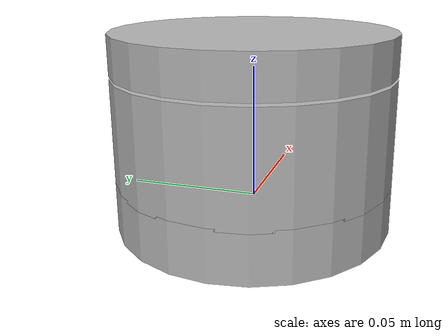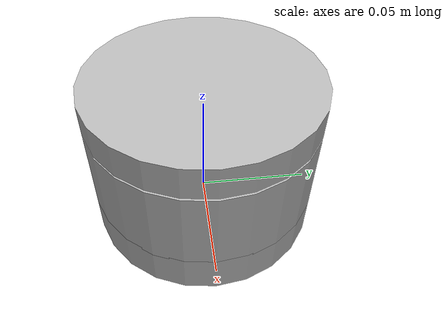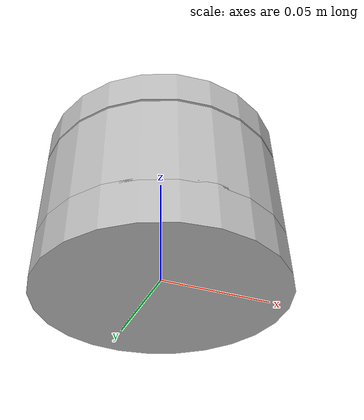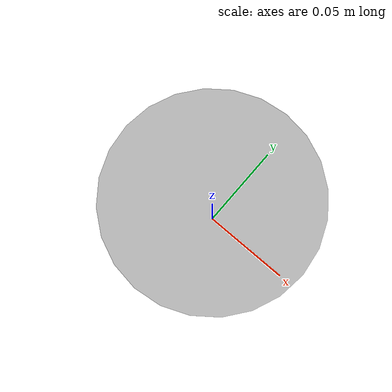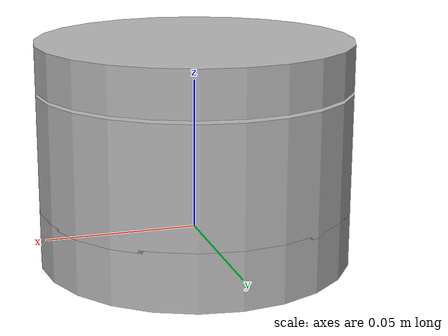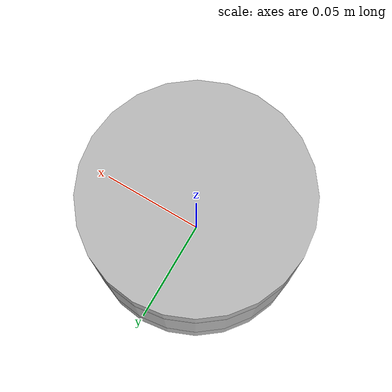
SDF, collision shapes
<?xml version="1.0"?>
<sdf version="1.6">
  <model name="velodyne_puck">
    <link name="base">
      <pose>0 0 0.000 0 0 0</pose>
      <!-- *** INERTIA PARAMETERS ********************************************** -->
      <inertial>
        <mass>0.1</mass>
        <inertia>
          <ixx>0.000030623</ixx>
          <iyy>0.000030623</iyy>
          <izz>0.000091036</izz>
          <ixy>0</ixy>
          <ixz>0</ixz>
          <iyz>0</iyz>
        </inertia>
      </inertial>
      <!-- *** COLLISION DEFINITION ******************************************** -->
      <collision name="base_collision">
        <geometry>
          <cylinder>
            <radius>0.05165</radius>
            <length>0.0188</length>
          </cylinder>
        </geometry>
      </collision>
      <!-- *** VISUAL DEFINITION *********************************************** -->
      <visual name="base_visual">
        <pose>0 0 -0.0094 0 0 0</pose>
        <geometry>
          <mesh>
            <uri>model://velodyne_puck/meshes/VLP16_base.dae</uri>
          </mesh>
        </geometry>
      </visual>
    </link>
    <!-- Give the base link a unique name -->
    <link name="scan">
      <pose>0 0 0.028 0 0 0</pose>
      <!-- *** INERTIA PARAMETERS ********************************************** -->
      <inertial>
        <mass>0.790</mass>
        <inertia>
          <ixx>0.000090623</ixx>
          <iyy>0.000090623</iyy>
          <izz>0.000091036</izz>
          <ixy>0</ixy>
          <ixz>0</ixz>
          <iyz>0</iyz>
        </inertia>
      </inertial>
      <!-- *** COLLISION DEFINITION ******************************************** -->
      <collision name="scan_collision">
        <geometry>
          <cylinder>
            <radius>0.05165</radius>
            <length>0.0392</length>
          </cylinder>
        </geometry>
      </collision>
      <!-- *** VISUAL DEFINITION *********************************************** -->
      <visual name="scan_visual">
        <!-- Lower the mesh by half the height, and rotate by 90 degrees -->
        <pose>0 0 -0.037 0 0 0</pose>
        <geometry>
          <mesh>
            <uri>model://velodyne_puck/meshes/VLP16_scan.dae</uri>
          </mesh>
        </geometry>
      </visual>
      <!-- Add a ray sensor, and give it a name -->
      <sensor type="ray" name="velodyne_puck">
        <pose>0 0 -0.004645 0 0 0</pose>
        <visualize>true</visualize>
        <update_rate>20</update_rate>
        <ray>
          <!-- set the variance to 0 since the plugin postprocesses the data to add noise -->
          <noise>
            <type>gaussian</type>
            <mean>0.0</mean>
            <stddev>0.000</stddev>
          </noise>
          <scan>
            <vertical>
              <samples>16</samples>
              <resolution>1</resolution>
              <min_angle>-0.26179938779</min_angle>
              <max_angle>0.26179938779</max_angle>
            </vertical>
            <horizontal>
              <!-- NOTE : Gazebo will quit if the number of samples is too much.
                   Reduce this value or the resolution -->
              <samples>900</samples>
              <resolution>0.10</resolution>
              <min_angle>0</min_angle>
              <max_angle>6.2831853071</max_angle>
            </horizontal>
          </scan>
          <range>
            <min>0.10</min>
            <max>100</max>
            <resolution>0.02</resolution>
          </range>
        </ray>
        <!-- The plugin declarion should be inside the sensor tag for proper driver behavior -->
        <plugin name="gazebo_ros_velodyne_puck_controller" filename="libgazebo_ros_block_laser.so">
          <topicName>/velodyne_puck/scan</topicName>
          <frameName>velodyne_puck</frameName>
          <updateRate>20</updateRate>
          <alwaysOn>true</alwaysOn>
          <gaussianNoise>0.0009</gaussianNoise>
        </plugin>
      </sensor>
    </link>
    <link name="top">
      <pose>0 0 0.056 0 0 0</pose>
      <!-- *** INERTIA PARAMETERS ********************************************** -->
      <inertial>
        <mass>0.1</mass>
        <inertia>
          <ixx>0.000030623</ixx>
          <iyy>0.000030623</iyy>
          <izz>0.000091036</izz>
          <ixy>0</ixy>
          <ixz>0</ixz>
          <iyz>0</iyz>
        </inertia>
      </inertial>
      <!-- *** COLLISION DEFINITION ******************************************** -->
      <collision name="top_collision">
        <geometry>
          <cylinder>
            <radius>0.05165</radius>
            <length>0.0147</length>
          </cylinder>
        </geometry>
      </collision>
      <!-- *** VISUAL DEFINITION *********************************************** -->
      <visual name="top_visual">
        <!-- Lower the mesh by half the height, and rotate by 90 degrees -->
        <pose>0 0 -0.065 0 0 0</pose>
        <geometry>
          <mesh>
            <uri>model://velodyne_puck/meshes/VLP16_top.dae</uri>
          </mesh>
        </geometry>
      </visual>
    </link>
    <!-- Joint is not functional with the current plugins.
         It can be used for rotating the head for nicer visualization -->
    <joint type="fixed" name="fixed01">
      <pose>0 0 0.0188 0 0 0</pose>
      <parent>base</parent>
      <child>scan</child>
      <axis>
        <xyz>0 0 1</xyz>
        <limit>
          <lower>-10000000000000000</lower>
          <upper>+10000000000000000</upper>
        </limit>
      </axis>
    </joint>
    <joint type="fixed" name="fixed02">
      <pose>0 0 0.0392 0 0 0</pose>
      <parent>scan</parent>
      <child>top</child>
      <axis>
        <xyz>0 0 1</xyz>
        <limit>
          <lower>-10000000000000000</lower>
          <upper>+10000000000000000</upper>
        </limit>
      </axis>
    </joint>

  </model>
</sdf>
